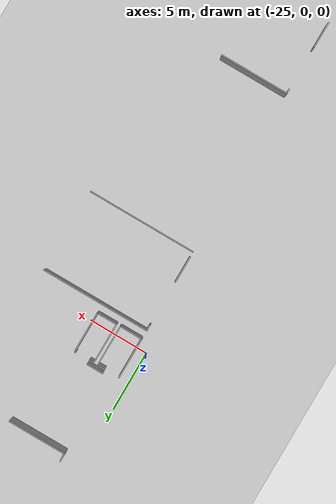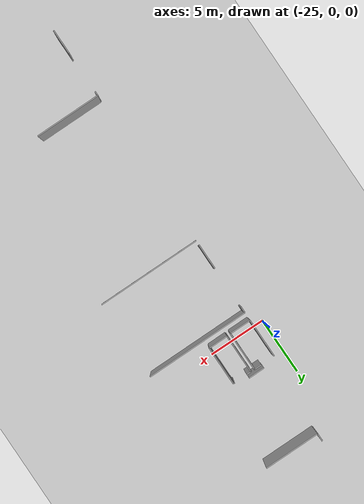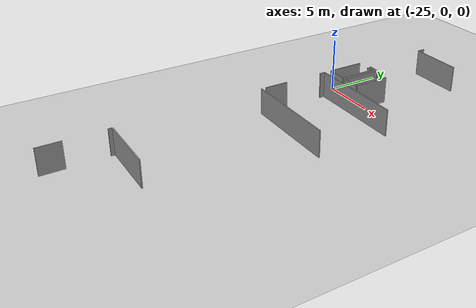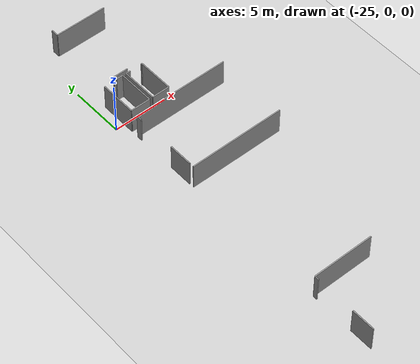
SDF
<sdf version="1.6">
 <world name="default">
  <model name="ground_plane">
   <static>1</static>
   <link name="link">
    <collision name="collision">
     <geometry><plane><normal>0 0 1</normal><size>100 100</size></plane></geometry>
     <surface><friction><ode><mu>100</mu><mu2>50</mu2></ode></friction></surface>
    </collision>
    <visual name="visual">
     <cast_shadows>0</cast_shadows>
     <geometry><plane><normal>0 0 1</normal><size>100 100</size></plane></geometry>
     <material>
      <script><uri>file://media/materials/scripts/gazebo.material</uri><name>Gazebo/Grey</name></script>
     </material>
    </visual>
   </link>
  </model>
  <model name="0510035737_A_40_1_105">
   <static>1</static>
   <link name="Wall_167">
    <collision name="Wall_167_Collision">
     <geometry><box><size>0.693718026119 0.1 2.5</size></box></geometry>
     <pose>0.34685901306 0 1.25 0 0 0</pose>
    </collision>
    <visual name="Wall_167_Visual">
     <pose>0.34685901306 0 1.25 0 0 0</pose>
     <geometry><box><size>0.693718026119 0.1 2.5</size></box></geometry>
     <material>
      <script><uri>file://media/materials/scripts/gazebo.material</uri><name>Gazebo/Grey</name></script>
      <ambient>1 1 1 1</ambient>
     </material>
    </visual>
    <pose>56.6985478695 -35.7563471132 0 0 0 -1.57079632679</pose>
   </link>
   <link name="Wall_168">
    <collision name="Wall_168_Collision">
     <geometry><box><size>4.85780559881 0.1 2.5</size></box></geometry>
     <pose>2.4289027994 0 1.25 0 0 0</pose>
    </collision>
    <visual name="Wall_168_Visual">
     <pose>2.4289027994 0 1.25 0 0 0</pose>
     <geometry><box><size>4.85780559881 0.1 2.5</size></box></geometry>
     <material>
      <script><uri>file://media/materials/scripts/gazebo.material</uri><name>Gazebo/Grey</name></script>
      <ambient>1 1 1 1</ambient>
     </material>
    </visual>
    <pose>56.6985478695 -36.4500651393 0 0 0 0.0</pose>
   </link>
   <link name="Wall_177">
    <collision name="Wall_177_Collision">
     <geometry><box><size>1.42607479902 0.1 2.5</size></box></geometry>
     <pose>0.713037399511 0 1.25 0 0 0</pose>
    </collision>
    <visual name="Wall_177_Visual">
     <pose>0.713037399511 0 1.25 0 0 0</pose>
     <geometry><box><size>1.42607479902 0.1 2.5</size></box></geometry>
     <material>
      <script><uri>file://media/materials/scripts/gazebo.material</uri><name>Gazebo/Grey</name></script>
      <ambient>1 1 1 1</ambient>
     </material>
    </visual>
    <pose>58.6988656223 -43.1050808681 0 0 0 3.14159265359</pose>
   </link>
   <link name="Wall_179">
    <collision name="Wall_179_Collision">
     <geometry><box><size>3.39360045756 0.1 2.5</size></box></geometry>
     <pose>1.69680022878 0 1.25 0 0 0</pose>
    </collision>
    <visual name="Wall_179_Visual">
     <pose>1.69680022878 0 1.25 0 0 0</pose>
     <geometry><box><size>3.39360045756 0.1 2.5</size></box></geometry>
     <material>
      <script><uri>file://media/materials/scripts/gazebo.material</uri><name>Gazebo/Grey</name></script>
      <ambient>1 1 1 1</ambient>
     </material>
    </visual>
    <pose>56.0960884624 -46.8192304026 0 0 0 1.57079632679</pose>
   </link>
   <link name="Wall_180">
    <collision name="Wall_180_Collision">
     <geometry><box><size>0.648470020018 0.1 2.5</size></box></geometry>
     <pose>0.324235010009 0 1.25 0 0 0</pose>
    </collision>
    <visual name="Wall_180_Visual">
     <pose>0.324235010009 0 1.25 0 0 0</pose>
     <geometry><box><size>0.648470020018 0.1 2.5</size></box></geometry>
     <material>
      <script><uri>file://media/materials/scripts/gazebo.material</uri><name>Gazebo/Grey</name></script>
      <ambient>1 1 1 1</ambient>
     </material>
    </visual>
    <pose>57.3114295701 -43.425629945 0 0 0 0.0</pose>
   </link>
   <link name="Wall_181">
    <collision name="Wall_181_Collision">
     <geometry><box><size>3.40351434654 0.1 2.5</size></box></geometry>
     <pose>1.70175717327 0 1.25 0 0 0</pose>
    </collision>
    <visual name="Wall_181_Visual">
     <pose>1.70175717327 0 1.25 0 0 0</pose>
     <geometry><box><size>3.40351434654 0.1 2.5</size></box></geometry>
     <material>
      <script><uri>file://media/materials/scripts/gazebo.material</uri><name>Gazebo/Grey</name></script>
      <ambient>1 1 1 1</ambient>
     </material>
    </visual>
    <pose>57.9598995901 -43.425629945 0 0 0 -1.57079632679</pose>
   </link>
   <link name="Wall_182">
    <collision name="Wall_182_Collision">
     <geometry><box><size>1.86383749424 0.1 2.5</size></box></geometry>
     <pose>0.931918747122 0 1.25 0 0 0</pose>
    </collision>
    <visual name="Wall_182_Visual">
     <pose>0.931918747122 0 1.25 0 0 0</pose>
     <geometry><box><size>1.86383749424 0.1 2.5</size></box></geometry>
     <material>
      <script><uri>file://media/materials/scripts/gazebo.material</uri><name>Gazebo/Grey</name></script>
      <ambient>1 1 1 1</ambient>
     </material>
    </visual>
    <pose>57.9598995901 -46.8291442916 0 0 0 3.13627355482</pose>
   </link>
   <link name="Wall_183">
    <collision name="Wall_183_Collision">
     <geometry><box><size>3.37733151155 0.1 2.5</size></box></geometry>
     <pose>1.68866575578 0 1.25 0 0 0</pose>
    </collision>
    <visual name="Wall_183_Visual">
     <pose>1.68866575578 0 1.25 0 0 0</pose>
     <geometry><box><size>3.37733151155 0.1 2.5</size></box></geometry>
     <material>
      <script><uri>file://media/materials/scripts/gazebo.material</uri><name>Gazebo/Grey</name></script>
      <ambient>1 1 1 1</ambient>
     </material>
    </visual>
    <pose>58.2923961743 -46.812366941 0 0 0 1.57079632679</pose>
   </link>
   <link name="Wall_184">
    <collision name="Wall_184_Collision">
     <geometry><box><size>0.413587111944 0.1 2.5</size></box></geometry>
     <pose>0.206793555972 0 1.25 0 0 0</pose>
    </collision>
    <visual name="Wall_184_Visual">
     <pose>0.206793555972 0 1.25 0 0 0</pose>
     <geometry><box><size>0.413587111944 0.1 2.5</size></box></geometry>
     <material>
      <script><uri>file://media/materials/scripts/gazebo.material</uri><name>Gazebo/Grey</name></script>
      <ambient>1 1 1 1</ambient>
     </material>
    </visual>
    <pose>58.2923961743 -43.4350354294 0 0 0 0.0</pose>
   </link>
   <link name="Wall_185">
    <collision name="Wall_185_Collision">
     <geometry><box><size>0.116424644911 0.1 2.5</size></box></geometry>
     <pose>0.0582123224556 0 1.25 0 0 0</pose>
    </collision>
    <visual name="Wall_185_Visual">
     <pose>0.0582123224556 0 1.25 0 0 0</pose>
     <geometry><box><size>0.116424644911 0.1 2.5</size></box></geometry>
     <material>
      <script><uri>file://media/materials/scripts/gazebo.material</uri><name>Gazebo/Grey</name></script>
      <ambient>1 1 1 1</ambient>
     </material>
    </visual>
    <pose>59.8521813733 -43.4350354294 0 0 0 0.0</pose>
   </link>
   <link name="Wall_186">
    <collision name="Wall_186_Collision">
     <geometry><box><size>3.36767182485 0.1 2.5</size></box></geometry>
     <pose>1.68383591243 0 1.25 0 0 0</pose>
    </collision>
    <visual name="Wall_186_Visual">
     <pose>1.68383591243 0 1.25 0 0 0</pose>
     <geometry><box><size>3.36767182485 0.1 2.5</size></box></geometry>
     <material>
      <script><uri>file://media/materials/scripts/gazebo.material</uri><name>Gazebo/Grey</name></script>
      <ambient>1 1 1 1</ambient>
     </material>
    </visual>
    <pose>59.9686060182 -43.4350354294 0 0 0 -1.57079632679</pose>
   </link>
   <link name="Wall_187">
    <collision name="Wall_187_Collision">
     <geometry><box><size>1.67623767724 0.1 2.5</size></box></geometry>
     <pose>0.838118838622 0 1.25 0 0 0</pose>
    </collision>
    <visual name="Wall_187_Visual">
     <pose>0.838118838622 0 1.25 0 0 0</pose>
     <geometry><box><size>1.67623767724 0.1 2.5</size></box></geometry>
     <material>
      <script><uri>file://media/materials/scripts/gazebo.material</uri><name>Gazebo/Grey</name></script>
      <ambient>1 1 1 1</ambient>
     </material>
    </visual>
    <pose>59.9686060182 -46.8027072543 0 0 0 -3.1358299027</pose>
   </link>
   <link name="Wall_228">
    <collision name="Wall_228_Collision">
     <geometry><box><size>2.24206412253 0.1 2.5</size></box></geometry>
     <pose>1.12103206126 0 1.25 0 0 0</pose>
    </collision>
    <visual name="Wall_228_Visual">
     <pose>1.12103206126 0 1.25 0 0 0</pose>
     <geometry><box><size>2.24206412253 0.1 2.5</size></box></geometry>
     <material>
      <script><uri>file://media/materials/scripts/gazebo.material</uri><name>Gazebo/Grey</name></script>
      <ambient>1 1 1 1</ambient>
     </material>
    </visual>
    <pose>56.0915128213 -53.9945982015 0 0 0 1.57079632679</pose>
   </link>
   <link name="Wall_229">
    <collision name="Wall_229_Collision">
     <geometry><box><size>0.516539035938 0.1 2.5</size></box></geometry>
     <pose>0.258269517969 0 1.25 0 0 0</pose>
    </collision>
    <visual name="Wall_229_Visual">
     <pose>0.258269517969 0 1.25 0 0 0</pose>
     <geometry><box><size>0.516539035938 0.1 2.5</size></box></geometry>
     <material>
      <script><uri>file://media/materials/scripts/gazebo.material</uri><name>Gazebo/Grey</name></script>
      <ambient>1 1 1 1</ambient>
     </material>
    </visual>
    <pose>56.0915128213 -48.0709224365 0 0 0 1.57079632679</pose>
   </link>
   <link name="Wall_230">
    <collision name="Wall_230_Collision">
     <geometry><box><size>9.01172508023 0.1 2.5</size></box></geometry>
     <pose>4.50586254012 0 1.25 0 0 0</pose>
    </collision>
    <visual name="Wall_230_Visual">
     <pose>4.50586254012 0 1.25 0 0 0</pose>
     <geometry><box><size>9.01172508023 0.1 2.5</size></box></geometry>
     <material>
      <script><uri>file://media/materials/scripts/gazebo.material</uri><name>Gazebo/Grey</name></script>
      <ambient>1 1 1 1</ambient>
     </material>
    </visual>
    <pose>56.0915128213 -47.5543834006 0 0 0 0.0</pose>
   </link>
   <link name="Wall_236">
    <collision name="Wall_236_Collision">
     <geometry><box><size>8.99138889772 0.1 2.5</size></box></geometry>
     <pose>4.49569444886 0 1.25 0 0 0</pose>
    </collision>
    <visual name="Wall_236_Visual">
     <pose>4.49569444886 0 1.25 0 0 0</pose>
     <geometry><box><size>8.99138889772 0.1 2.5</size></box></geometry>
     <material>
      <script><uri>file://media/materials/scripts/gazebo.material</uri><name>Gazebo/Grey</name></script>
      <ambient>1 1 1 1</ambient>
     </material>
    </visual>
    <pose>56.0795653141 -54.4061516952 0 0 0 0.0</pose>
   </link>
   <link name="Wall_249">
    <collision name="Wall_249_Collision">
     <geometry><box><size>2.15970258333 0.1 2.5</size></box></geometry>
     <pose>1.07985129167 0 1.25 0 0 0</pose>
    </collision>
    <visual name="Wall_249_Visual">
     <pose>1.07985129167 0 1.25 0 0 0</pose>
     <geometry><box><size>2.15970258333 0.1 2.5</size></box></geometry>
     <material>
      <script><uri>file://media/materials/scripts/gazebo.material</uri><name>Gazebo/Grey</name></script>
      <ambient>1 1 1 1</ambient>
     </material>
    </visual>
    <pose>56.0892250008 -74.4228019446 0 0 0 1.57079632679</pose>
   </link>
   <link name="Wall_250">
    <collision name="Wall_250_Collision">
     <geometry><box><size>0.382066029043 0.1 2.5</size></box></geometry>
     <pose>0.191033014521 0 1.25 0 0 0</pose>
    </collision>
    <visual name="Wall_250_Visual">
     <pose>0.191033014521 0 1.25 0 0 0</pose>
     <geometry><box><size>0.382066029043 0.1 2.5</size></box></geometry>
     <material>
      <script><uri>file://media/materials/scripts/gazebo.material</uri><name>Gazebo/Grey</name></script>
      <ambient>1 1 1 1</ambient>
     </material>
    </visual>
    <pose>56.0892250008 -68.6028407105 0 0 0 1.57079632679</pose>
   </link>
   <link name="Wall_251">
    <collision name="Wall_251_Collision">
     <geometry><box><size>5.709637444 0.1 2.5</size></box></geometry>
     <pose>2.854818722 0 1.25 0 0 0</pose>
    </collision>
    <visual name="Wall_251_Visual">
     <pose>2.854818722 0 1.25 0 0 0</pose>
     <geometry><box><size>5.709637444 0.1 2.5</size></box></geometry>
     <material>
      <script><uri>file://media/materials/scripts/gazebo.material</uri><name>Gazebo/Grey</name></script>
      <ambient>1 1 1 1</ambient>
     </material>
    </visual>
    <pose>56.0892250008 -68.2207746815 0 0 0 0.0</pose>
   </link>
   <pose>-80.2 45.8857980363 0 0 0 0</pose>
  </model>
 </world>
</sdf>
